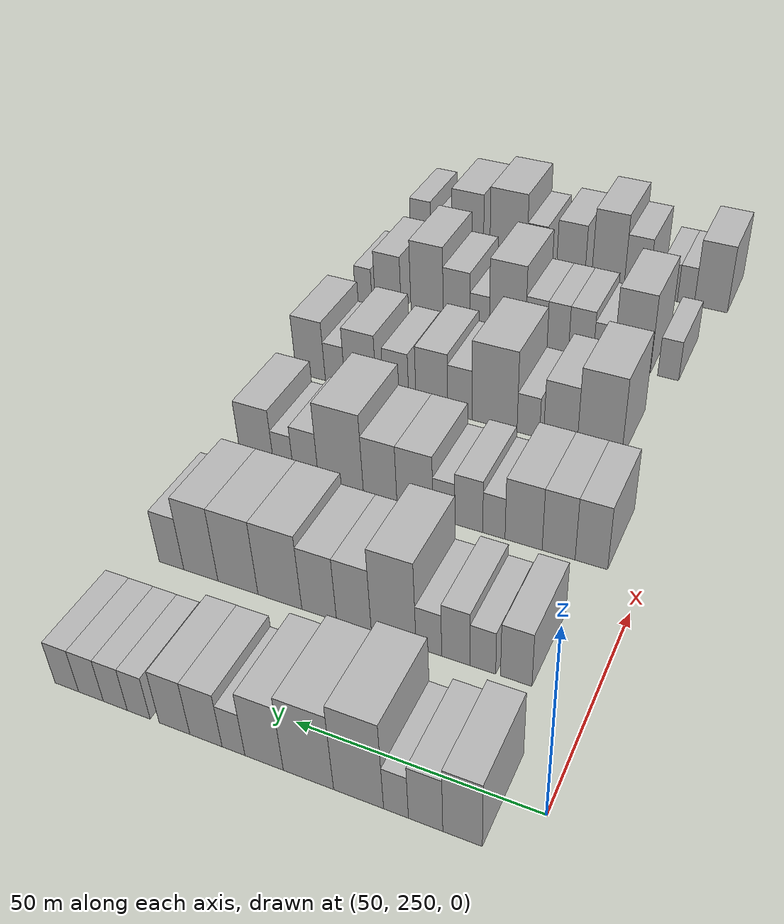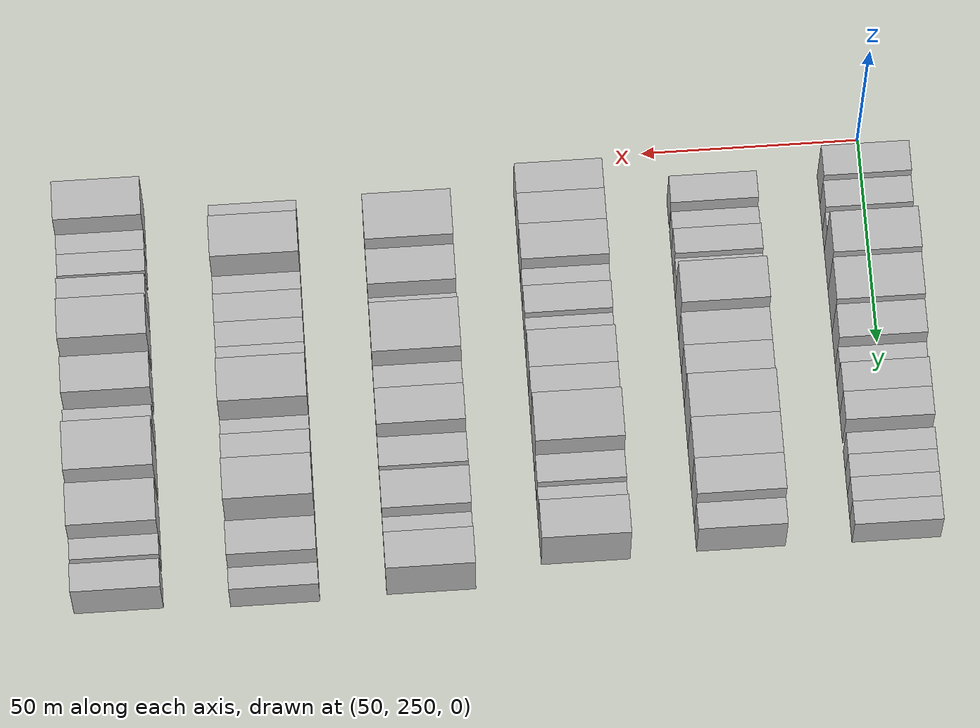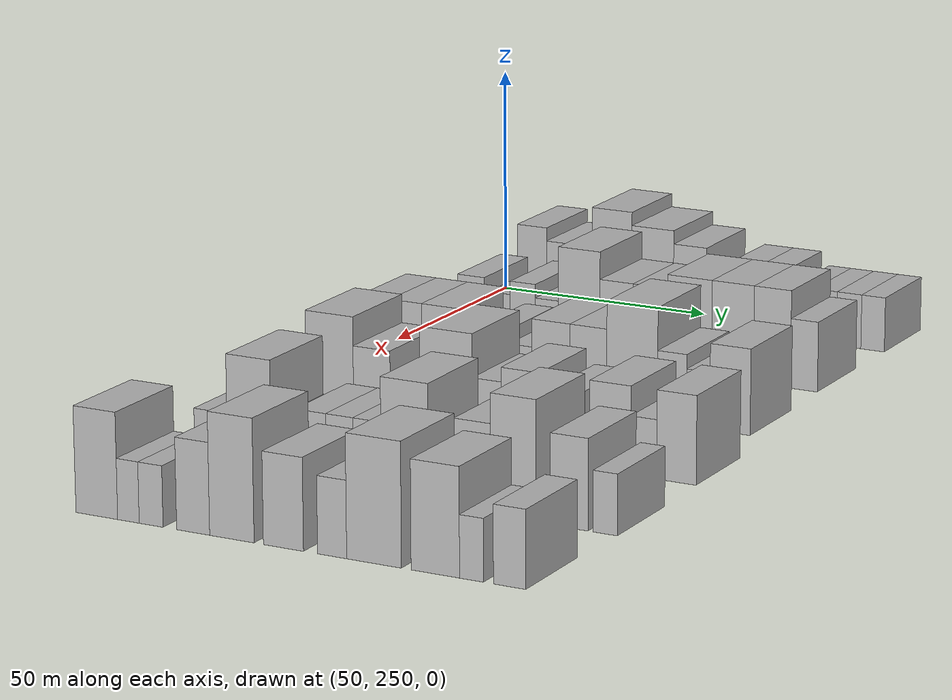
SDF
<sdf version="1.6">
 <world name="default">
  <model name="building_93">
   <static>1</static>
   <pose>50.0000 261.9035 0 0.000000 0.000000 0.000000</pose>
   <link name="link">
    <pose>0 0 9.00 0 0 0</pose>
    <collision name="collision"><geometry><box><size>20.0000 7.3867 18.0000</size></box></geometry></collision>
    <visual name="visual">
     <cast_shadows>0</cast_shadows>
     <geometry><box><size>20.0000 7.3867 18.0000</size></box></geometry>
     <material>
      <script>
       <uri>model://HANNAS_wall/materials/scripts</uri>
       <uri>model://HANNAS_wall/materials/textures</uri>
       <name>vrc/HANNAS_wall</name>
      </script>
     </material>
    </visual>
   </link>
  </model>
  <model name="building_94">
   <static>1</static>
   <pose>50.0000 268.8762 0 0.000000 0.000000 0.000000</pose>
   <link name="link">
    <pose>0 0 7.50 0 0 0</pose>
    <collision name="collision"><geometry><box><size>20.0000 6.5587 15.0000</size></box></geometry></collision>
    <visual name="visual">
     <cast_shadows>0</cast_shadows>
     <geometry><box><size>20.0000 6.5587 15.0000</size></box></geometry>
     <material>
      <script>
       <uri>model://HANNAS_wall/materials/scripts</uri>
       <uri>model://HANNAS_wall/materials/textures</uri>
       <name>vrc/HANNAS_wall</name>
      </script>
     </material>
    </visual>
   </link>
  </model>
  <model name="building_95">
   <static>1</static>
   <pose>50.0000 274.5606 0 0.000000 0.000000 0.000000</pose>
   <link name="link">
    <pose>0 0 6.00 0 0 0</pose>
    <collision name="collision"><geometry><box><size>20.0000 4.8101 12.0000</size></box></geometry></collision>
    <visual name="visual">
     <cast_shadows>0</cast_shadows>
     <geometry><box><size>20.0000 4.8101 12.0000</size></box></geometry>
     <material>
      <script>
       <uri>model://HANNAS_wall/materials/scripts</uri>
       <uri>model://HANNAS_wall/materials/textures</uri>
       <name>vrc/HANNAS_wall</name>
      </script>
     </material>
    </visual>
   </link>
  </model>
  <model name="building_96">
   <static>1</static>
   <pose>50.0000 281.9173 0 0.000000 0.000000 0.000000</pose>
   <link name="link">
    <pose>0 0 12.00 0 0 0</pose>
    <collision name="collision"><geometry><box><size>20.0000 9.9032 24.0000</size></box></geometry></collision>
    <visual name="visual">
     <cast_shadows>0</cast_shadows>
     <geometry><box><size>20.0000 9.9032 24.0000</size></box></geometry>
     <material>
      <script>
       <uri>model://HANNAS_wall/materials/scripts</uri>
       <uri>model://HANNAS_wall/materials/textures</uri>
       <name>vrc/HANNAS_wall</name>
      </script>
     </material>
    </visual>
   </link>
  </model>
  <model name="building_97">
   <static>1</static>
   <pose>50.0000 291.9926 0 0.000000 0.000000 0.000000</pose>
   <link name="link">
    <pose>0 0 10.50 0 0 0</pose>
    <collision name="collision"><geometry><box><size>20.0000 10.2474 21.0000</size></box></geometry></collision>
    <visual name="visual">
     <cast_shadows>0</cast_shadows>
     <geometry><box><size>20.0000 10.2474 21.0000</size></box></geometry>
     <material>
      <script>
       <uri>model://HANNAS_wall/materials/scripts</uri>
       <uri>model://HANNAS_wall/materials/textures</uri>
       <name>vrc/HANNAS_wall</name>
      </script>
     </material>
    </visual>
   </link>
  </model>
  <model name="building_98">
   <static>1</static>
   <pose>50.0000 301.1323 0 0.000000 0.000000 0.000000</pose>
   <link name="link">
    <pose>0 0 9.00 0 0 0</pose>
    <collision name="collision"><geometry><box><size>20.0000 8.0319 18.0000</size></box></geometry></collision>
    <visual name="visual">
     <cast_shadows>0</cast_shadows>
     <geometry><box><size>20.0000 8.0319 18.0000</size></box></geometry>
     <material>
      <script>
       <uri>model://HANNAS_wall/materials/scripts</uri>
       <uri>model://HANNAS_wall/materials/textures</uri>
       <name>vrc/HANNAS_wall</name>
      </script>
     </material>
    </visual>
   </link>
  </model>
  <model name="building_99">
   <static>1</static>
   <pose>50.0000 307.5703 0 0.000000 0.000000 0.000000</pose>
   <link name="link">
    <pose>0 0 6.00 0 0 0</pose>
    <collision name="collision"><geometry><box><size>20.0000 4.8442 12.0000</size></box></geometry></collision>
    <visual name="visual">
     <cast_shadows>0</cast_shadows>
     <geometry><box><size>20.0000 4.8442 12.0000</size></box></geometry>
     <material>
      <script>
       <uri>model://HANNAS_wall/materials/scripts</uri>
       <uri>model://HANNAS_wall/materials/textures</uri>
       <name>vrc/HANNAS_wall</name>
      </script>
     </material>
    </visual>
   </link>
  </model>
  <model name="building_100">
   <static>1</static>
   <pose>50.0000 313.4895 0 0.000000 0.000000 0.000000</pose>
   <link name="link">
    <pose>0 0 7.50 0 0 0</pose>
    <collision name="collision"><geometry><box><size>20.0000 6.9943 15.0000</size></box></geometry></collision>
    <visual name="visual">
     <cast_shadows>0</cast_shadows>
     <geometry><box><size>20.0000 6.9943 15.0000</size></box></geometry>
     <material>
      <script>
       <uri>model://HANNAS_wall/materials/scripts</uri>
       <uri>model://HANNAS_wall/materials/textures</uri>
       <name>vrc/HANNAS_wall</name>
      </script>
     </material>
    </visual>
   </link>
  </model>
  <model name="building_101">
   <static>1</static>
   <pose>50.0000 320.3660 0 0.000000 0.000000 0.000000</pose>
   <link name="link">
    <pose>0 0 7.50 0 0 0</pose>
    <collision name="collision"><geometry><box><size>20.0000 6.7585 15.0000</size></box></geometry></collision>
    <visual name="visual">
     <cast_shadows>0</cast_shadows>
     <geometry><box><size>20.0000 6.7585 15.0000</size></box></geometry>
     <material>
      <script>
       <uri>model://HANNAS_wall/materials/scripts</uri>
       <uri>model://HANNAS_wall/materials/textures</uri>
       <name>vrc/HANNAS_wall</name>
      </script>
     </material>
    </visual>
   </link>
  </model>
  <model name="building_102">
   <static>1</static>
   <pose>50.0000 328.3291 0 0.000000 0.000000 0.000000</pose>
   <link name="link">
    <pose>0 0 6.00 0 0 0</pose>
    <collision name="collision"><geometry><box><size>20.0000 5.1678 12.0000</size></box></geometry></collision>
    <visual name="visual">
     <cast_shadows>0</cast_shadows>
     <geometry><box><size>20.0000 5.1678 12.0000</size></box></geometry>
     <material>
      <script>
       <uri>model://HANNAS_wall/materials/scripts</uri>
       <uri>model://HANNAS_wall/materials/textures</uri>
       <name>vrc/HANNAS_wall</name>
      </script>
     </material>
    </visual>
   </link>
  </model>
  <model name="building_103">
   <static>1</static>
   <pose>50.0000 333.6425 0 0.000000 0.000000 0.000000</pose>
   <link name="link">
    <pose>0 0 6.00 0 0 0</pose>
    <collision name="collision"><geometry><box><size>20.0000 5.4590 12.0000</size></box></geometry></collision>
    <visual name="visual">
     <cast_shadows>0</cast_shadows>
     <geometry><box><size>20.0000 5.4590 12.0000</size></box></geometry>
     <material>
      <script>
       <uri>model://HANNAS_wall/materials/scripts</uri>
       <uri>model://HANNAS_wall/materials/textures</uri>
       <name>vrc/HANNAS_wall</name>
      </script>
     </material>
    </visual>
   </link>
  </model>
  <model name="building_104">
   <static>1</static>
   <pose>50.0000 339.2415 0 0.000000 0.000000 0.000000</pose>
   <link name="link">
    <pose>0 0 6.00 0 0 0</pose>
    <collision name="collision"><geometry><box><size>20.0000 5.7389 12.0000</size></box></geometry></collision>
    <visual name="visual">
     <cast_shadows>0</cast_shadows>
     <geometry><box><size>20.0000 5.7389 12.0000</size></box></geometry>
     <material>
      <script>
       <uri>model://HANNAS_wall/materials/scripts</uri>
       <uri>model://HANNAS_wall/materials/textures</uri>
       <name>vrc/HANNAS_wall</name>
      </script>
     </material>
    </visual>
   </link>
  </model>
  <model name="building_105">
   <static>1</static>
   <pose>50.0000 344.8641 0 0.000000 0.000000 0.000000</pose>
   <link name="link">
    <pose>0 0 6.00 0 0 0</pose>
    <collision name="collision"><geometry><box><size>20.0000 5.5062 12.0000</size></box></geometry></collision>
    <visual name="visual">
     <cast_shadows>0</cast_shadows>
     <geometry><box><size>20.0000 5.5062 12.0000</size></box></geometry>
     <material>
      <script>
       <uri>model://HANNAS_wall/materials/scripts</uri>
       <uri>model://HANNAS_wall/materials/textures</uri>
       <name>vrc/HANNAS_wall</name>
      </script>
     </material>
    </visual>
   </link>
  </model>
  <model name="building_223">
   <static>1</static>
   <pose>85.0000 265.4134 0 0.000000 0.000000 0.000000</pose>
   <link name="link">
    <pose>0 0 7.50 0 0 0</pose>
    <collision name="collision"><geometry><box><size>20.0000 6.5529 15.0000</size></box></geometry></collision>
    <visual name="visual">
     <cast_shadows>0</cast_shadows>
     <geometry><box><size>20.0000 6.5529 15.0000</size></box></geometry>
     <material>
      <script>
       <uri>model://HANNAS_wall/materials/scripts</uri>
       <uri>model://HANNAS_wall/materials/textures</uri>
       <name>vrc/HANNAS_wall</name>
      </script>
     </material>
    </visual>
   </link>
  </model>
  <model name="building_224">
   <static>1</static>
   <pose>85.0000 272.3790 0 0.000000 0.000000 0.000000</pose>
   <link name="link">
    <pose>0 0 6.00 0 0 0</pose>
    <collision name="collision"><geometry><box><size>20.0000 5.3784 12.0000</size></box></geometry></collision>
    <visual name="visual">
     <cast_shadows>0</cast_shadows>
     <geometry><box><size>20.0000 5.3784 12.0000</size></box></geometry>
     <material>
      <script>
       <uri>model://HANNAS_wall/materials/scripts</uri>
       <uri>model://HANNAS_wall/materials/textures</uri>
       <name>vrc/HANNAS_wall</name>
      </script>
     </material>
    </visual>
   </link>
  </model>
  <model name="building_225">
   <static>1</static>
   <pose>85.0000 278.1212 0 0.000000 0.000000 0.000000</pose>
   <link name="link">
    <pose>0 0 7.50 0 0 0</pose>
    <collision name="collision"><geometry><box><size>20.0000 6.1060 15.0000</size></box></geometry></collision>
    <visual name="visual">
     <cast_shadows>0</cast_shadows>
     <geometry><box><size>20.0000 6.1060 15.0000</size></box></geometry>
     <material>
      <script>
       <uri>model://HANNAS_wall/materials/scripts</uri>
       <uri>model://HANNAS_wall/materials/textures</uri>
       <name>vrc/HANNAS_wall</name>
      </script>
     </material>
    </visual>
   </link>
  </model>
  <model name="building_226">
   <static>1</static>
   <pose>85.0000 283.9638 0 0.000000 0.000000 0.000000</pose>
   <link name="link">
    <pose>0 0 6.00 0 0 0</pose>
    <collision name="collision"><geometry><box><size>20.0000 5.5792 12.0000</size></box></geometry></collision>
    <visual name="visual">
     <cast_shadows>0</cast_shadows>
     <geometry><box><size>20.0000 5.5792 12.0000</size></box></geometry>
     <material>
      <script>
       <uri>model://HANNAS_wall/materials/scripts</uri>
       <uri>model://HANNAS_wall/materials/textures</uri>
       <name>vrc/HANNAS_wall</name>
      </script>
     </material>
    </visual>
   </link>
  </model>
  <model name="building_227">
   <static>1</static>
   <pose>85.0000 291.7179 0 0.000000 0.000000 0.000000</pose>
   <link name="link">
    <pose>0 0 12.00 0 0 0</pose>
    <collision name="collision"><geometry><box><size>20.0000 9.9290 24.0000</size></box></geometry></collision>
    <visual name="visual">
     <cast_shadows>0</cast_shadows>
     <geometry><box><size>20.0000 9.9290 24.0000</size></box></geometry>
     <material>
      <script>
       <uri>model://HANNAS_wall/materials/scripts</uri>
       <uri>model://HANNAS_wall/materials/textures</uri>
       <name>vrc/HANNAS_wall</name>
      </script>
     </material>
    </visual>
   </link>
  </model>
  <model name="building_228">
   <static>1</static>
   <pose>85.0000 300.6374 0 0.000000 0.000000 0.000000</pose>
   <link name="link">
    <pose>0 0 9.00 0 0 0</pose>
    <collision name="collision"><geometry><box><size>20.0000 7.9100 18.0000</size></box></geometry></collision>
    <visual name="visual">
     <cast_shadows>0</cast_shadows>
     <geometry><box><size>20.0000 7.9100 18.0000</size></box></geometry>
     <material>
      <script>
       <uri>model://HANNAS_wall/materials/scripts</uri>
       <uri>model://HANNAS_wall/materials/textures</uri>
       <name>vrc/HANNAS_wall</name>
      </script>
     </material>
    </visual>
   </link>
  </model>
  <model name="building_229">
   <static>1</static>
   <pose>85.0000 308.6092 0 0.000000 0.000000 0.000000</pose>
   <link name="link">
    <pose>0 0 9.00 0 0 0</pose>
    <collision name="collision"><geometry><box><size>20.0000 8.0336 18.0000</size></box></geometry></collision>
    <visual name="visual">
     <cast_shadows>0</cast_shadows>
     <geometry><box><size>20.0000 8.0336 18.0000</size></box></geometry>
     <material>
      <script>
       <uri>model://HANNAS_wall/materials/scripts</uri>
       <uri>model://HANNAS_wall/materials/textures</uri>
       <name>vrc/HANNAS_wall</name>
      </script>
     </material>
    </visual>
   </link>
  </model>
  <model name="building_230">
   <static>1</static>
   <pose>85.0000 317.8204 0 0.000000 0.000000 0.000000</pose>
   <link name="link">
    <pose>0 0 10.50 0 0 0</pose>
    <collision name="collision"><geometry><box><size>20.0000 10.3888 21.0000</size></box></geometry></collision>
    <visual name="visual">
     <cast_shadows>0</cast_shadows>
     <geometry><box><size>20.0000 10.3888 21.0000</size></box></geometry>
     <material>
      <script>
       <uri>model://HANNAS_wall/materials/scripts</uri>
       <uri>model://HANNAS_wall/materials/textures</uri>
       <name>vrc/HANNAS_wall</name>
      </script>
     </material>
    </visual>
   </link>
  </model>
  <model name="building_231">
   <static>1</static>
   <pose>85.0000 327.8777 0 0.000000 0.000000 0.000000</pose>
   <link name="link">
    <pose>0 0 10.50 0 0 0</pose>
    <collision name="collision"><geometry><box><size>20.0000 9.7257 21.0000</size></box></geometry></collision>
    <visual name="visual">
     <cast_shadows>0</cast_shadows>
     <geometry><box><size>20.0000 9.7257 21.0000</size></box></geometry>
     <material>
      <script>
       <uri>model://HANNAS_wall/materials/scripts</uri>
       <uri>model://HANNAS_wall/materials/textures</uri>
       <name>vrc/HANNAS_wall</name>
      </script>
     </material>
    </visual>
   </link>
  </model>
  <model name="building_232">
   <static>1</static>
   <pose>85.0000 336.9767 0 0.000000 0.000000 0.000000</pose>
   <link name="link">
    <pose>0 0 10.50 0 0 0</pose>
    <collision name="collision"><geometry><box><size>20.0000 8.4722 21.0000</size></box></geometry></collision>
    <visual name="visual">
     <cast_shadows>0</cast_shadows>
     <geometry><box><size>20.0000 8.4722 21.0000</size></box></geometry>
     <material>
      <script>
       <uri>model://HANNAS_wall/materials/scripts</uri>
       <uri>model://HANNAS_wall/materials/textures</uri>
       <name>vrc/HANNAS_wall</name>
      </script>
     </material>
    </visual>
   </link>
  </model>
  <model name="building_233">
   <static>1</static>
   <pose>85.0000 344.3126 0 0.000000 0.000000 0.000000</pose>
   <link name="link">
    <pose>0 0 7.50 0 0 0</pose>
    <collision name="collision"><geometry><box><size>20.0000 6.1997 15.0000</size></box></geometry></collision>
    <visual name="visual">
     <cast_shadows>0</cast_shadows>
     <geometry><box><size>20.0000 6.1997 15.0000</size></box></geometry>
     <material>
      <script>
       <uri>model://HANNAS_wall/materials/scripts</uri>
       <uri>model://HANNAS_wall/materials/textures</uri>
       <name>vrc/HANNAS_wall</name>
      </script>
     </material>
    </visual>
   </link>
  </model>
  <model name="building_345">
   <static>1</static>
   <pose>120.0000 261.5817 0 0.000000 0.000000 0.000000</pose>
   <link name="link">
    <pose>0 0 9.00 0 0 0</pose>
    <collision name="collision"><geometry><box><size>20.0000 7.3208 18.0000</size></box></geometry></collision>
    <visual name="visual">
     <cast_shadows>0</cast_shadows>
     <geometry><box><size>20.0000 7.3208 18.0000</size></box></geometry>
     <material>
      <script>
       <uri>model://HANNAS_wall/materials/scripts</uri>
       <uri>model://HANNAS_wall/materials/textures</uri>
       <name>vrc/HANNAS_wall</name>
      </script>
     </material>
    </visual>
   </link>
  </model>
  <model name="building_346">
   <static>1</static>
   <pose>120.0000 269.0087 0 0.000000 0.000000 0.000000</pose>
   <link name="link">
    <pose>0 0 9.00 0 0 0</pose>
    <collision name="collision"><geometry><box><size>20.0000 7.5332 18.0000</size></box></geometry></collision>
    <visual name="visual">
     <cast_shadows>0</cast_shadows>
     <geometry><box><size>20.0000 7.5332 18.0000</size></box></geometry>
     <material>
      <script>
       <uri>model://HANNAS_wall/materials/scripts</uri>
       <uri>model://HANNAS_wall/materials/textures</uri>
       <name>vrc/HANNAS_wall</name>
      </script>
     </material>
    </visual>
   </link>
  </model>
  <model name="building_347">
   <static>1</static>
   <pose>120.0000 277.0974 0 0.000000 0.000000 0.000000</pose>
   <link name="link">
    <pose>0 0 9.00 0 0 0</pose>
    <collision name="collision"><geometry><box><size>20.0000 8.6443 18.0000</size></box></geometry></collision>
    <visual name="visual">
     <cast_shadows>0</cast_shadows>
     <geometry><box><size>20.0000 8.6443 18.0000</size></box></geometry>
     <material>
      <script>
       <uri>model://HANNAS_wall/materials/scripts</uri>
       <uri>model://HANNAS_wall/materials/textures</uri>
       <name>vrc/HANNAS_wall</name>
      </script>
     </material>
    </visual>
   </link>
  </model>
  <model name="building_348">
   <static>1</static>
   <pose>120.0000 284.0467 0 0.000000 0.000000 0.000000</pose>
   <link name="link">
    <pose>0 0 6.00 0 0 0</pose>
    <collision name="collision"><geometry><box><size>20.0000 5.2542 12.0000</size></box></geometry></collision>
    <visual name="visual">
     <cast_shadows>0</cast_shadows>
     <geometry><box><size>20.0000 5.2542 12.0000</size></box></geometry>
     <material>
      <script>
       <uri>model://HANNAS_wall/materials/scripts</uri>
       <uri>model://HANNAS_wall/materials/textures</uri>
       <name>vrc/HANNAS_wall</name>
      </script>
     </material>
    </visual>
   </link>
  </model>
  <model name="building_349">
   <static>1</static>
   <pose>120.0000 290.0022 0 0.000000 0.000000 0.000000</pose>
   <link name="link">
    <pose>0 0 7.50 0 0 0</pose>
    <collision name="collision"><geometry><box><size>20.0000 6.6567 15.0000</size></box></geometry></collision>
    <visual name="visual">
     <cast_shadows>0</cast_shadows>
     <geometry><box><size>20.0000 6.6567 15.0000</size></box></geometry>
     <material>
      <script>
       <uri>model://HANNAS_wall/materials/scripts</uri>
       <uri>model://HANNAS_wall/materials/textures</uri>
       <name>vrc/HANNAS_wall</name>
      </script>
     </material>
    </visual>
   </link>
  </model>
  <model name="building_350">
   <static>1</static>
   <pose>120.0000 295.9792 0 0.000000 0.000000 0.000000</pose>
   <link name="link">
    <pose>0 0 6.00 0 0 0</pose>
    <collision name="collision"><geometry><box><size>20.0000 5.2974 12.0000</size></box></geometry></collision>
    <visual name="visual">
     <cast_shadows>0</cast_shadows>
     <geometry><box><size>20.0000 5.2974 12.0000</size></box></geometry>
     <material>
      <script>
       <uri>model://HANNAS_wall/materials/scripts</uri>
       <uri>model://HANNAS_wall/materials/textures</uri>
       <name>vrc/HANNAS_wall</name>
      </script>
     </material>
    </visual>
   </link>
  </model>
  <model name="building_351">
   <static>1</static>
   <pose>120.0000 303.0803 0 0.000000 0.000000 0.000000</pose>
   <link name="link">
    <pose>0 0 9.00 0 0 0</pose>
    <collision name="collision"><geometry><box><size>20.0000 8.9048 18.0000</size></box></geometry></collision>
    <visual name="visual">
     <cast_shadows>0</cast_shadows>
     <geometry><box><size>20.0000 8.9048 18.0000</size></box></geometry>
     <material>
      <script>
       <uri>model://HANNAS_wall/materials/scripts</uri>
       <uri>model://HANNAS_wall/materials/textures</uri>
       <name>vrc/HANNAS_wall</name>
      </script>
     </material>
    </visual>
   </link>
  </model>
  <model name="building_352">
   <static>1</static>
   <pose>120.0000 311.7403 0 0.000000 0.000000 0.000000</pose>
   <link name="link">
    <pose>0 0 9.00 0 0 0</pose>
    <collision name="collision"><geometry><box><size>20.0000 8.4152 18.0000</size></box></geometry></collision>
    <visual name="visual">
     <cast_shadows>0</cast_shadows>
     <geometry><box><size>20.0000 8.4152 18.0000</size></box></geometry>
     <material>
      <script>
       <uri>model://HANNAS_wall/materials/scripts</uri>
       <uri>model://HANNAS_wall/materials/textures</uri>
       <name>vrc/HANNAS_wall</name>
      </script>
     </material>
    </visual>
   </link>
  </model>
  <model name="building_353">
   <static>1</static>
   <pose>120.0000 321.7131 0 0.000000 0.000000 0.000000</pose>
   <link name="link">
    <pose>0 0 12.00 0 0 0</pose>
    <collision name="collision"><geometry><box><size>20.0000 11.5304 24.0000</size></box></geometry></collision>
    <visual name="visual">
     <cast_shadows>0</cast_shadows>
     <geometry><box><size>20.0000 11.5304 24.0000</size></box></geometry>
     <material>
      <script>
       <uri>model://HANNAS_wall/materials/scripts</uri>
       <uri>model://HANNAS_wall/materials/textures</uri>
       <name>vrc/HANNAS_wall</name>
      </script>
     </material>
    </visual>
   </link>
  </model>
  <model name="building_354">
   <static>1</static>
   <pose>120.0000 330.7566 0 0.000000 0.000000 0.000000</pose>
   <link name="link">
    <pose>0 0 7.50 0 0 0</pose>
    <collision name="collision"><geometry><box><size>20.0000 6.5566 15.0000</size></box></geometry></collision>
    <visual name="visual">
     <cast_shadows>0</cast_shadows>
     <geometry><box><size>20.0000 6.5566 15.0000</size></box></geometry>
     <material>
      <script>
       <uri>model://HANNAS_wall/materials/scripts</uri>
       <uri>model://HANNAS_wall/materials/textures</uri>
       <name>vrc/HANNAS_wall</name>
      </script>
     </material>
    </visual>
   </link>
  </model>
  <model name="building_355">
   <static>1</static>
   <pose>120.0000 336.6260 0 0.000000 0.000000 0.000000</pose>
   <link name="link">
    <pose>0 0 6.00 0 0 0</pose>
    <collision name="collision"><geometry><box><size>20.0000 5.1821 12.0000</size></box></geometry></collision>
    <visual name="visual">
     <cast_shadows>0</cast_shadows>
     <geometry><box><size>20.0000 5.1821 12.0000</size></box></geometry>
     <material>
      <script>
       <uri>model://HANNAS_wall/materials/scripts</uri>
       <uri>model://HANNAS_wall/materials/textures</uri>
       <name>vrc/HANNAS_wall</name>
      </script>
     </material>
    </visual>
   </link>
  </model>
  <model name="building_356">
   <static>1</static>
   <pose>120.0000 343.7062 0 0.000000 0.000000 0.000000</pose>
   <link name="link">
    <pose>0 0 9.00 0 0 0</pose>
    <collision name="collision"><geometry><box><size>20.0000 8.9782 18.0000</size></box></geometry></collision>
    <visual name="visual">
     <cast_shadows>0</cast_shadows>
     <geometry><box><size>20.0000 8.9782 18.0000</size></box></geometry>
     <material>
      <script>
       <uri>model://HANNAS_wall/materials/scripts</uri>
       <uri>model://HANNAS_wall/materials/textures</uri>
       <name>vrc/HANNAS_wall</name>
      </script>
     </material>
    </visual>
   </link>
  </model>
  <model name="building_479">
   <static>1</static>
   <pose>155.0000 271.1330 0 0.000000 0.000000 0.000000</pose>
   <link name="link">
    <pose>0 0 12.00 0 0 0</pose>
    <collision name="collision"><geometry><box><size>20.0000 11.0551 24.0000</size></box></geometry></collision>
    <visual name="visual">
     <cast_shadows>0</cast_shadows>
     <geometry><box><size>20.0000 11.0551 24.0000</size></box></geometry>
     <material>
      <script>
       <uri>model://HANNAS_wall/materials/scripts</uri>
       <uri>model://HANNAS_wall/materials/textures</uri>
       <name>vrc/HANNAS_wall</name>
      </script>
     </material>
    </visual>
   </link>
  </model>
  <model name="building_480">
   <static>1</static>
   <pose>155.0000 280.9059 0 0.000000 0.000000 0.000000</pose>
   <link name="link">
    <pose>0 0 9.00 0 0 0</pose>
    <collision name="collision"><geometry><box><size>20.0000 8.4908 18.0000</size></box></geometry></collision>
    <visual name="visual">
     <cast_shadows>0</cast_shadows>
     <geometry><box><size>20.0000 8.4908 18.0000</size></box></geometry>
     <material>
      <script>
       <uri>model://HANNAS_wall/materials/scripts</uri>
       <uri>model://HANNAS_wall/materials/textures</uri>
       <name>vrc/HANNAS_wall</name>
      </script>
     </material>
    </visual>
   </link>
  </model>
  <model name="building_481">
   <static>1</static>
   <pose>155.0000 289.0652 0 0.000000 0.000000 0.000000</pose>
   <link name="link">
    <pose>0 0 6.00 0 0 0</pose>
    <collision name="collision"><geometry><box><size>20.0000 5.8277 12.0000</size></box></geometry></collision>
    <visual name="visual">
     <cast_shadows>0</cast_shadows>
     <geometry><box><size>20.0000 5.8277 12.0000</size></box></geometry>
     <material>
      <script>
       <uri>model://HANNAS_wall/materials/scripts</uri>
       <uri>model://HANNAS_wall/materials/textures</uri>
       <name>vrc/HANNAS_wall</name>
      </script>
     </material>
    </visual>
   </link>
  </model>
  <model name="building_482">
   <static>1</static>
   <pose>155.0000 297.8948 0 0.000000 0.000000 0.000000</pose>
   <link name="link">
    <pose>0 0 12.00 0 0 0</pose>
    <collision name="collision"><geometry><box><size>20.0000 11.8316 24.0000</size></box></geometry></collision>
    <visual name="visual">
     <cast_shadows>0</cast_shadows>
     <geometry><box><size>20.0000 11.8316 24.0000</size></box></geometry>
     <material>
      <script>
       <uri>model://HANNAS_wall/materials/scripts</uri>
       <uri>model://HANNAS_wall/materials/textures</uri>
       <name>vrc/HANNAS_wall</name>
      </script>
     </material>
    </visual>
   </link>
  </model>
  <model name="building_483">
   <static>1</static>
   <pose>155.0000 307.0452 0 0.000000 0.000000 0.000000</pose>
   <link name="link">
    <pose>0 0 7.50 0 0 0</pose>
    <collision name="collision"><geometry><box><size>20.0000 6.4692 15.0000</size></box></geometry></collision>
    <visual name="visual">
     <cast_shadows>0</cast_shadows>
     <geometry><box><size>20.0000 6.4692 15.0000</size></box></geometry>
     <material>
      <script>
       <uri>model://HANNAS_wall/materials/scripts</uri>
       <uri>model://HANNAS_wall/materials/textures</uri>
       <name>vrc/HANNAS_wall</name>
      </script>
     </material>
    </visual>
   </link>
  </model>
  <model name="building_484">
   <static>1</static>
   <pose>155.0000 314.5785 0 0.000000 0.000000 0.000000</pose>
   <link name="link">
    <pose>0 0 9.00 0 0 0</pose>
    <collision name="collision"><geometry><box><size>20.0000 8.5974 18.0000</size></box></geometry></collision>
    <visual name="visual">
     <cast_shadows>0</cast_shadows>
     <geometry><box><size>20.0000 8.5974 18.0000</size></box></geometry>
     <material>
      <script>
       <uri>model://HANNAS_wall/materials/scripts</uri>
       <uri>model://HANNAS_wall/materials/textures</uri>
       <name>vrc/HANNAS_wall</name>
      </script>
     </material>
    </visual>
   </link>
  </model>
  <model name="building_485">
   <static>1</static>
   <pose>155.0000 324.3857 0 0.000000 0.000000 0.000000</pose>
   <link name="link">
    <pose>0 0 7.50 0 0 0</pose>
    <collision name="collision"><geometry><box><size>20.0000 7.0169 15.0000</size></box></geometry></collision>
    <visual name="visual">
     <cast_shadows>0</cast_shadows>
     <geometry><box><size>20.0000 7.0169 15.0000</size></box></geometry>
     <material>
      <script>
       <uri>model://HANNAS_wall/materials/scripts</uri>
       <uri>model://HANNAS_wall/materials/textures</uri>
       <name>vrc/HANNAS_wall</name>
      </script>
     </material>
    </visual>
   </link>
  </model>
  <model name="building_486">
   <static>1</static>
   <pose>155.0000 334.3546 0 0.000000 0.000000 0.000000</pose>
   <link name="link">
    <pose>0 0 9.00 0 0 0</pose>
    <collision name="collision"><geometry><box><size>20.0000 8.9209 18.0000</size></box></geometry></collision>
    <visual name="visual">
     <cast_shadows>0</cast_shadows>
     <geometry><box><size>20.0000 8.9209 18.0000</size></box></geometry>
     <material>
      <script>
       <uri>model://HANNAS_wall/materials/scripts</uri>
       <uri>model://HANNAS_wall/materials/textures</uri>
       <name>vrc/HANNAS_wall</name>
      </script>
     </material>
    </visual>
   </link>
  </model>
  <model name="building_487">
   <static>1</static>
   <pose>155.0000 341.6270 0 0.000000 0.000000 0.000000</pose>
   <link name="link">
    <pose>0 0 6.00 0 0 0</pose>
    <collision name="collision"><geometry><box><size>20.0000 5.6240 12.0000</size></box></geometry></collision>
    <visual name="visual">
     <cast_shadows>0</cast_shadows>
     <geometry><box><size>20.0000 5.6240 12.0000</size></box></geometry>
     <material>
      <script>
       <uri>model://HANNAS_wall/materials/scripts</uri>
       <uri>model://HANNAS_wall/materials/textures</uri>
       <name>vrc/HANNAS_wall</name>
      </script>
     </material>
    </visual>
   </link>
  </model>
  <model name="building_488">
   <static>1</static>
   <pose>155.0000 348.6959 0 0.000000 0.000000 0.000000</pose>
   <link name="link">
    <pose>0 0 9.00 0 0 0</pose>
    <collision name="collision"><geometry><box><size>20.0000 8.5137 18.0000</size></box></geometry></collision>
    <visual name="visual">
     <cast_shadows>0</cast_shadows>
     <geometry><box><size>20.0000 8.5137 18.0000</size></box></geometry>
     <material>
      <script>
       <uri>model://HANNAS_wall/materials/scripts</uri>
       <uri>model://HANNAS_wall/materials/textures</uri>
       <name>vrc/HANNAS_wall</name>
      </script>
     </material>
    </visual>
   </link>
  </model>
  <model name="building_609">
   <static>1</static>
   <pose>190.0000 263.8319 0 0.000000 0.000000 0.000000</pose>
   <link name="link">
    <pose>0 0 6.00 0 0 0</pose>
    <collision name="collision"><geometry><box><size>20.0000 5.5521 12.0000</size></box></geometry></collision>
    <visual name="visual">
     <cast_shadows>0</cast_shadows>
     <geometry><box><size>20.0000 5.5521 12.0000</size></box></geometry>
     <material>
      <script>
       <uri>model://HANNAS_wall/materials/scripts</uri>
       <uri>model://HANNAS_wall/materials/textures</uri>
       <name>vrc/HANNAS_wall</name>
      </script>
     </material>
    </visual>
   </link>
  </model>
  <model name="building_610">
   <static>1</static>
   <pose>190.0000 273.5691 0 0.000000 0.000000 0.000000</pose>
   <link name="link">
    <pose>0 0 12.00 0 0 0</pose>
    <collision name="collision"><geometry><box><size>20.0000 9.9223 24.0000</size></box></geometry></collision>
    <visual name="visual">
     <cast_shadows>0</cast_shadows>
     <geometry><box><size>20.0000 9.9223 24.0000</size></box></geometry>
     <material>
      <script>
       <uri>model://HANNAS_wall/materials/scripts</uri>
       <uri>model://HANNAS_wall/materials/textures</uri>
       <name>vrc/HANNAS_wall</name>
      </script>
     </material>
    </visual>
   </link>
  </model>
  <model name="building_611">
   <static>1</static>
   <pose>190.0000 281.2798 0 0.000000 0.000000 0.000000</pose>
   <link name="link">
    <pose>0 0 6.00 0 0 0</pose>
    <collision name="collision"><geometry><box><size>20.0000 5.4990 12.0000</size></box></geometry></collision>
    <visual name="visual">
     <cast_shadows>0</cast_shadows>
     <geometry><box><size>20.0000 5.4990 12.0000</size></box></geometry>
     <material>
      <script>
       <uri>model://HANNAS_wall/materials/scripts</uri>
       <uri>model://HANNAS_wall/materials/textures</uri>
       <name>vrc/HANNAS_wall</name>
      </script>
     </material>
    </visual>
   </link>
  </model>
  <model name="building_612">
   <static>1</static>
   <pose>190.0000 287.4524 0 0.000000 0.000000 0.000000</pose>
   <link name="link">
    <pose>0 0 7.50 0 0 0</pose>
    <collision name="collision"><geometry><box><size>20.0000 6.8462 15.0000</size></box></geometry></collision>
    <visual name="visual">
     <cast_shadows>0</cast_shadows>
     <geometry><box><size>20.0000 6.8462 15.0000</size></box></geometry>
     <material>
      <script>
       <uri>model://HANNAS_wall/materials/scripts</uri>
       <uri>model://HANNAS_wall/materials/textures</uri>
       <name>vrc/HANNAS_wall</name>
      </script>
     </material>
    </visual>
   </link>
  </model>
  <model name="building_613">
   <static>1</static>
   <pose>190.0000 293.8854 0 0.000000 0.000000 0.000000</pose>
   <link name="link">
    <pose>0 0 7.50 0 0 0</pose>
    <collision name="collision"><geometry><box><size>20.0000 6.0197 15.0000</size></box></geometry></collision>
    <visual name="visual">
     <cast_shadows>0</cast_shadows>
     <geometry><box><size>20.0000 6.0197 15.0000</size></box></geometry>
     <material>
      <script>
       <uri>model://HANNAS_wall/materials/scripts</uri>
       <uri>model://HANNAS_wall/materials/textures</uri>
       <name>vrc/HANNAS_wall</name>
      </script>
     </material>
    </visual>
   </link>
  </model>
  <model name="building_614">
   <static>1</static>
   <pose>190.0000 299.9638 0 0.000000 0.000000 0.000000</pose>
   <link name="link">
    <pose>0 0 7.50 0 0 0</pose>
    <collision name="collision"><geometry><box><size>20.0000 6.1372 15.0000</size></box></geometry></collision>
    <visual name="visual">
     <cast_shadows>0</cast_shadows>
     <geometry><box><size>20.0000 6.1372 15.0000</size></box></geometry>
     <material>
      <script>
       <uri>model://HANNAS_wall/materials/scripts</uri>
       <uri>model://HANNAS_wall/materials/textures</uri>
       <name>vrc/HANNAS_wall</name>
      </script>
     </material>
    </visual>
   </link>
  </model>
  <model name="building_615">
   <static>1</static>
   <pose>190.0000 308.1817 0 0.000000 0.000000 0.000000</pose>
   <link name="link">
    <pose>0 0 12.00 0 0 0</pose>
    <collision name="collision"><geometry><box><size>20.0000 10.2986 24.0000</size></box></geometry></collision>
    <visual name="visual">
     <cast_shadows>0</cast_shadows>
     <geometry><box><size>20.0000 10.2986 24.0000</size></box></geometry>
     <material>
      <script>
       <uri>model://HANNAS_wall/materials/scripts</uri>
       <uri>model://HANNAS_wall/materials/textures</uri>
       <name>vrc/HANNAS_wall</name>
      </script>
     </material>
    </visual>
   </link>
  </model>
  <model name="building_616">
   <static>1</static>
   <pose>190.0000 316.1313 0 0.000000 0.000000 0.000000</pose>
   <link name="link">
    <pose>0 0 6.00 0 0 0</pose>
    <collision name="collision"><geometry><box><size>20.0000 5.6005 12.0000</size></box></geometry></collision>
    <visual name="visual">
     <cast_shadows>0</cast_shadows>
     <geometry><box><size>20.0000 5.6005 12.0000</size></box></geometry>
     <material>
      <script>
       <uri>model://HANNAS_wall/materials/scripts</uri>
       <uri>model://HANNAS_wall/materials/textures</uri>
       <name>vrc/HANNAS_wall</name>
      </script>
     </material>
    </visual>
   </link>
  </model>
  <model name="building_617">
   <static>1</static>
   <pose>190.0000 322.8624 0 0.000000 0.000000 0.000000</pose>
   <link name="link">
    <pose>0 0 9.00 0 0 0</pose>
    <collision name="collision"><geometry><box><size>20.0000 7.8619 18.0000</size></box></geometry></collision>
    <visual name="visual">
     <cast_shadows>0</cast_shadows>
     <geometry><box><size>20.0000 7.8619 18.0000</size></box></geometry>
     <material>
      <script>
       <uri>model://HANNAS_wall/materials/scripts</uri>
       <uri>model://HANNAS_wall/materials/textures</uri>
       <name>vrc/HANNAS_wall</name>
      </script>
     </material>
    </visual>
   </link>
  </model>
  <model name="building_618">
   <static>1</static>
   <pose>190.0000 331.6270 0 0.000000 0.000000 0.000000</pose>
   <link name="link">
    <pose>0 0 12.00 0 0 0</pose>
    <collision name="collision"><geometry><box><size>20.0000 9.6672 24.0000</size></box></geometry></collision>
    <visual name="visual">
     <cast_shadows>0</cast_shadows>
     <geometry><box><size>20.0000 9.6672 24.0000</size></box></geometry>
     <material>
      <script>
       <uri>model://HANNAS_wall/materials/scripts</uri>
       <uri>model://HANNAS_wall/materials/textures</uri>
       <name>vrc/HANNAS_wall</name>
      </script>
     </material>
    </visual>
   </link>
  </model>
  <model name="building_619">
   <static>1</static>
   <pose>190.0000 343.4248 0 0.000000 0.000000 0.000000</pose>
   <link name="link">
    <pose>0 0 9.00 0 0 0</pose>
    <collision name="collision"><geometry><box><size>20.0000 7.9283 18.0000</size></box></geometry></collision>
    <visual name="visual">
     <cast_shadows>0</cast_shadows>
     <geometry><box><size>20.0000 7.9283 18.0000</size></box></geometry>
     <material>
      <script>
       <uri>model://HANNAS_wall/materials/scripts</uri>
       <uri>model://HANNAS_wall/materials/textures</uri>
       <name>vrc/HANNAS_wall</name>
      </script>
     </material>
    </visual>
   </link>
  </model>
  <model name="building_620">
   <static>1</static>
   <pose>190.0000 350.9499 0 0.000000 0.000000 0.000000</pose>
   <link name="link">
    <pose>0 0 6.00 0 0 0</pose>
    <collision name="collision"><geometry><box><size>20.0000 5.1221 12.0000</size></box></geometry></collision>
    <visual name="visual">
     <cast_shadows>0</cast_shadows>
     <geometry><box><size>20.0000 5.1221 12.0000</size></box></geometry>
     <material>
      <script>
       <uri>model://HANNAS_wall/materials/scripts</uri>
       <uri>model://HANNAS_wall/materials/textures</uri>
       <name>vrc/HANNAS_wall</name>
      </script>
     </material>
    </visual>
   </link>
  </model>
  <model name="building_726">
   <static>1</static>
   <pose>225.0000 261.3166 0 0.000000 0.000000 0.000000</pose>
   <link name="link">
    <pose>0 0 10.50 0 0 0</pose>
    <collision name="collision"><geometry><box><size>20.0000 9.3749 21.0000</size></box></geometry></collision>
    <visual name="visual">
     <cast_shadows>0</cast_shadows>
     <geometry><box><size>20.0000 9.3749 21.0000</size></box></geometry>
     <material>
      <script>
       <uri>model://HANNAS_wall/materials/scripts</uri>
       <uri>model://HANNAS_wall/materials/textures</uri>
       <name>vrc/HANNAS_wall</name>
      </script>
     </material>
    </visual>
   </link>
  </model>
  <model name="building_727">
   <static>1</static>
   <pose>225.0000 268.4046 0 0.000000 0.000000 0.000000</pose>
   <link name="link">
    <pose>0 0 6.00 0 0 0</pose>
    <collision name="collision"><geometry><box><size>20.0000 4.8010 12.0000</size></box></geometry></collision>
    <visual name="visual">
     <cast_shadows>0</cast_shadows>
     <geometry><box><size>20.0000 4.8010 12.0000</size></box></geometry>
     <material>
      <script>
       <uri>model://HANNAS_wall/materials/scripts</uri>
       <uri>model://HANNAS_wall/materials/textures</uri>
       <name>vrc/HANNAS_wall</name>
      </script>
     </material>
    </visual>
   </link>
  </model>
  <model name="building_728">
   <static>1</static>
   <pose>225.0000 273.4557 0 0.000000 0.000000 0.000000</pose>
   <link name="link">
    <pose>0 0 6.00 0 0 0</pose>
    <collision name="collision"><geometry><box><size>20.0000 5.3014 12.0000</size></box></geometry></collision>
    <visual name="visual">
     <cast_shadows>0</cast_shadows>
     <geometry><box><size>20.0000 5.3014 12.0000</size></box></geometry>
     <material>
      <script>
       <uri>model://HANNAS_wall/materials/scripts</uri>
       <uri>model://HANNAS_wall/materials/textures</uri>
       <name>vrc/HANNAS_wall</name>
      </script>
     </material>
    </visual>
   </link>
  </model>
  <model name="building_729">
   <static>1</static>
   <pose>225.0000 282.7281 0 0.000000 0.000000 0.000000</pose>
   <link name="link">
    <pose>0 0 9.00 0 0 0</pose>
    <collision name="collision"><geometry><box><size>20.0000 7.2433 18.0000</size></box></geometry></collision>
    <visual name="visual">
     <cast_shadows>0</cast_shadows>
     <geometry><box><size>20.0000 7.2433 18.0000</size></box></geometry>
     <material>
      <script>
       <uri>model://HANNAS_wall/materials/scripts</uri>
       <uri>model://HANNAS_wall/materials/textures</uri>
       <name>vrc/HANNAS_wall</name>
      </script>
     </material>
    </visual>
   </link>
  </model>
  <model name="building_730">
   <static>1</static>
   <pose>225.0000 291.1801 0 0.000000 0.000000 0.000000</pose>
   <link name="link">
    <pose>0 0 12.00 0 0 0</pose>
    <collision name="collision"><geometry><box><size>20.0000 9.6608 24.0000</size></box></geometry></collision>
    <visual name="visual">
     <cast_shadows>0</cast_shadows>
     <geometry><box><size>20.0000 9.6608 24.0000</size></box></geometry>
     <material>
      <script>
       <uri>model://HANNAS_wall/materials/scripts</uri>
       <uri>model://HANNAS_wall/materials/textures</uri>
       <name>vrc/HANNAS_wall</name>
      </script>
     </material>
    </visual>
   </link>
  </model>
  <model name="building_731">
   <static>1</static>
   <pose>225.0000 302.3117 0 0.000000 0.000000 0.000000</pose>
   <link name="link">
    <pose>0 0 9.00 0 0 0</pose>
    <collision name="collision"><geometry><box><size>20.0000 8.6023 18.0000</size></box></geometry></collision>
    <visual name="visual">
     <cast_shadows>0</cast_shadows>
     <geometry><box><size>20.0000 8.6023 18.0000</size></box></geometry>
     <material>
      <script>
       <uri>model://HANNAS_wall/materials/scripts</uri>
       <uri>model://HANNAS_wall/materials/textures</uri>
       <name>vrc/HANNAS_wall</name>
      </script>
     </material>
    </visual>
   </link>
  </model>
  <model name="building_732">
   <static>1</static>
   <pose>225.0000 312.6916 0 0.000000 0.000000 0.000000</pose>
   <link name="link">
    <pose>0 0 7.50 0 0 0</pose>
    <collision name="collision"><geometry><box><size>20.0000 6.1575 15.0000</size></box></geometry></collision>
    <visual name="visual">
     <cast_shadows>0</cast_shadows>
     <geometry><box><size>20.0000 6.1575 15.0000</size></box></geometry>
     <material>
      <script>
       <uri>model://HANNAS_wall/materials/scripts</uri>
       <uri>model://HANNAS_wall/materials/textures</uri>
       <name>vrc/HANNAS_wall</name>
      </script>
     </material>
    </visual>
   </link>
  </model>
  <model name="building_733">
   <static>1</static>
   <pose>225.0000 321.5138 0 0.000000 0.000000 0.000000</pose>
   <link name="link">
    <pose>0 0 12.00 0 0 0</pose>
    <collision name="collision"><geometry><box><size>20.0000 11.4870 24.0000</size></box></geometry></collision>
    <visual name="visual">
     <cast_shadows>0</cast_shadows>
     <geometry><box><size>20.0000 11.4870 24.0000</size></box></geometry>
     <material>
      <script>
       <uri>model://HANNAS_wall/materials/scripts</uri>
       <uri>model://HANNAS_wall/materials/textures</uri>
       <name>vrc/HANNAS_wall</name>
      </script>
     </material>
    </visual>
   </link>
  </model>
  <model name="building_734">
   <static>1</static>
   <pose>225.0000 334.2546 0 0.000000 0.000000 0.000000</pose>
   <link name="link">
    <pose>0 0 10.50 0 0 0</pose>
    <collision name="collision"><geometry><box><size>20.0000 9.9944 21.0000</size></box></geometry></collision>
    <visual name="visual">
     <cast_shadows>0</cast_shadows>
     <geometry><box><size>20.0000 9.9944 21.0000</size></box></geometry>
     <material>
      <script>
       <uri>model://HANNAS_wall/materials/scripts</uri>
       <uri>model://HANNAS_wall/materials/textures</uri>
       <name>vrc/HANNAS_wall</name>
      </script>
     </material>
    </visual>
   </link>
  </model>
  <model name="building_735">
   <static>1</static>
   <pose>225.0000 341.7145 0 0.000000 0.000000 0.000000</pose>
   <link name="link">
    <pose>0 0 6.00 0 0 0</pose>
    <collision name="collision"><geometry><box><size>20.0000 4.9255 12.0000</size></box></geometry></collision>
    <visual name="visual">
     <cast_shadows>0</cast_shadows>
     <geometry><box><size>20.0000 4.9255 12.0000</size></box></geometry>
     <material>
      <script>
       <uri>model://HANNAS_wall/materials/scripts</uri>
       <uri>model://HANNAS_wall/materials/textures</uri>
       <name>vrc/HANNAS_wall</name>
      </script>
     </material>
    </visual>
   </link>
  </model>
  <model name="building_736">
   <static>1</static>
   <pose>225.0000 349.4798 0 0.000000 0.000000 0.000000</pose>
   <link name="link">
    <pose>0 0 7.50 0 0 0</pose>
    <collision name="collision"><geometry><box><size>20.0000 6.6051 15.0000</size></box></geometry></collision>
    <visual name="visual">
     <cast_shadows>0</cast_shadows>
     <geometry><box><size>20.0000 6.6051 15.0000</size></box></geometry>
     <material>
      <script>
       <uri>model://HANNAS_wall/materials/scripts</uri>
       <uri>model://HANNAS_wall/materials/textures</uri>
       <name>vrc/HANNAS_wall</name>
      </script>
     </material>
    </visual>
   </link>
  </model>
 </world>
</sdf>
